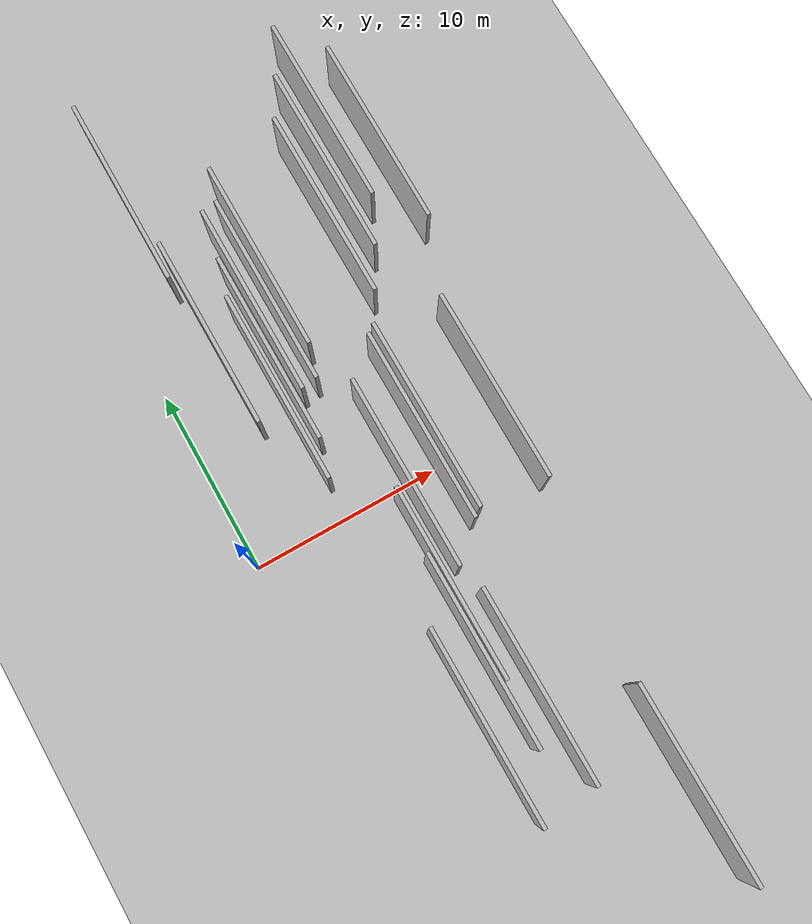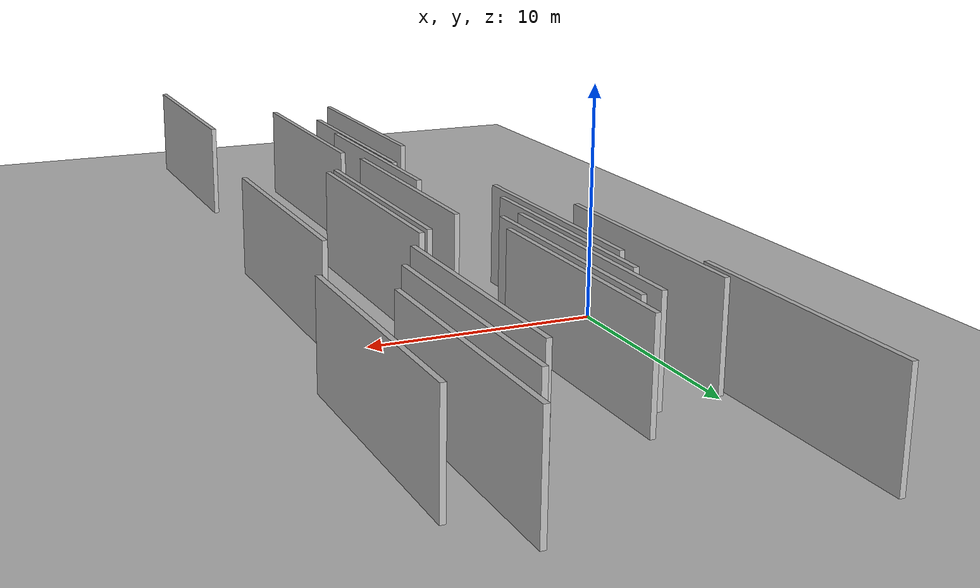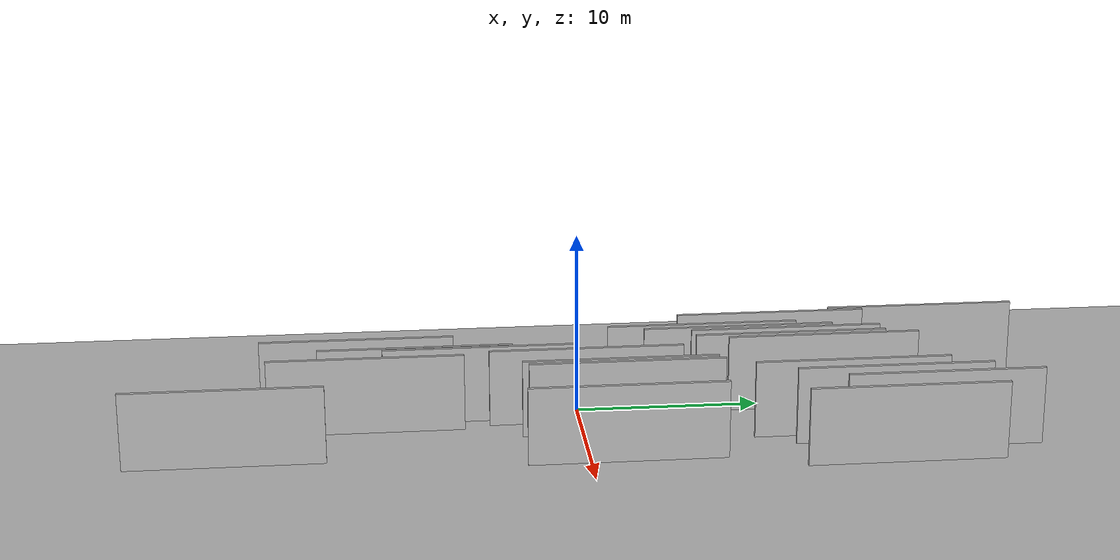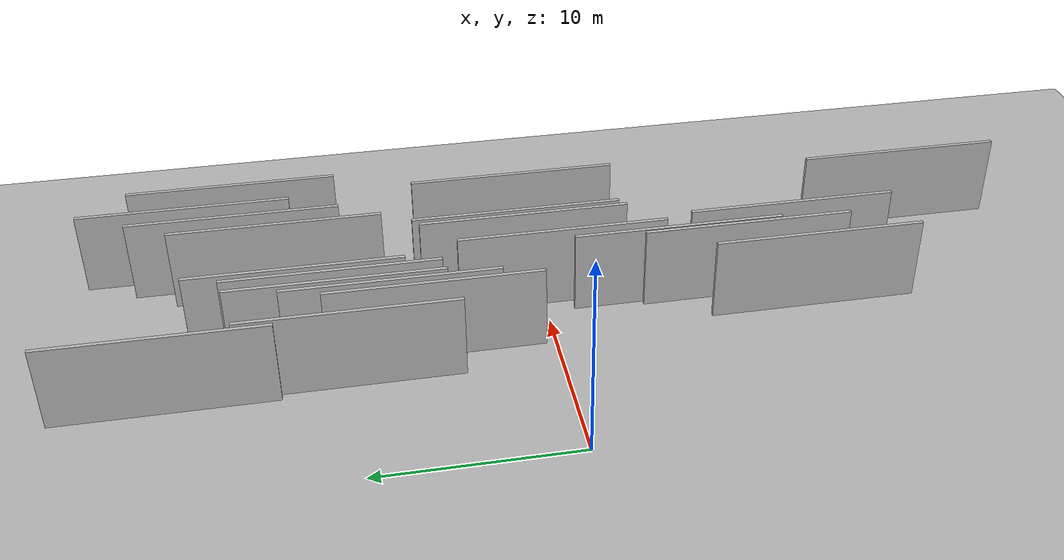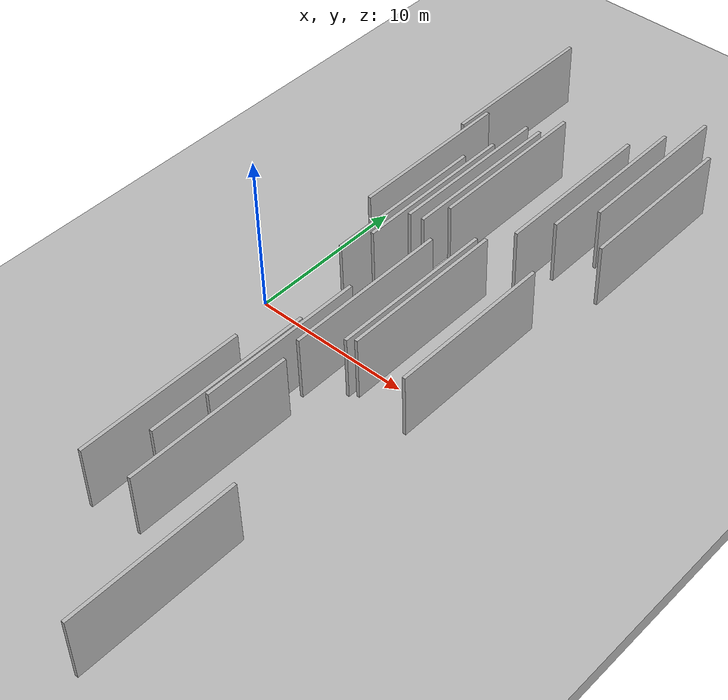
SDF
<?xml version="1.0" encoding="utf-8"?>

<sdf version="1.6">

   <world name="default">

      <gui fullscreen="0">

         <camera name="user_camera">

            <pose>-15 0 4.57585 0 0 0</pose>

            <view_controller>orbit</view_controller>

         </camera>

      </gui>

      <scene>

         <sky>

           <clouds>

             <speed>12</speed>

           </clouds>

         </sky>

         <ambient>0.4 0.4 0.4 1</ambient>

         <background>0.7 0.7 0.7 1</background>

         <shadows>1</shadows>

      </scene>

      <gravity>0 0 -9.8066</gravity>

      <magnetic_field>6e-06 2.3e-05 -4.2e-05</magnetic_field>

      <physics default="0" name="default_physics" type="ode">

         <ode>

            <solver>

               <type>quick</type>

               <iters>10</iters>

               <sor>1.0</sor>

               <use_dynamic_moi_rescaling>0</use_dynamic_moi_rescaling>

            </solver>

            <constraints>

               <cfm>0</cfm>

               <erp>0.2</erp>

               <contact_max_correcting_vel>100</contact_max_correcting_vel>

               <contact_surface_layer>0.001</contact_surface_layer>

            </constraints>

         </ode>

         <max_step_size>0.004</max_step_size>

         <real_time_factor>1</real_time_factor>

         <real_time_update_rate>250</real_time_update_rate>

      </physics>

      <light name="sun" type="directional">

         <cast_shadows>1</cast_shadows>

         <pose>0 0 10 0 0 0</pose>

         <diffuse>0.8 0.8 0.8 1</diffuse>

         <specular>0.2 0.2 0.2 1</specular>

         <attenuation>

            <range>1000</range>

            <constant>0.9</constant>

            <linear>0.01</linear>

            <quadratic>0.001</quadratic>

         </attenuation>

         <direction>-0.5 0.1 -0.9</direction>

      </light>

      <include>

         <name>ground_plane_1</name>

         <uri>model://HANNAS_ground_plane</uri>

         <pose>0 0 0  0 0 0</pose>

      </include>

      <include>

         <name>ground_plane_2</name>

         <uri>model://HANNAS_ground_plane</uri>

         <pose>100 0 0  0 0 0</pose>

      </include>

      <model name="HANNAS_wall_1">

         <static>1</static>

         <pose frame="">8.5832 -11.6122 2.5 0.000000 0.000000 1.570796</pose>

         <link name="link">

            <pose frame="">0 0 2.00 0 0 0</pose>

            <collision name="collision">

               <geometry>

                  <box>

                     <size>10.00 0.2 4.00</size>

                  </box>

               </geometry>

               <max_contacts>10</max_contacts>

               <surface>

                  <contact>

                     <ode/>

                  </contact>

                  <bounce/>

                  <friction>

                     <torsional>

                        <ode/>

                     </torsional>

                     <ode/>

                  </friction>

               </surface>

            </collision>

            <visual name="visual">

               <cast_shadows>0</cast_shadows>

               <geometry>

                  <box>

                     <size>10.00 0.2 4.00</size>

                  </box>

               </geometry>

               <material>

                  <script>

                     <uri>model://HANNAS_wall/materials/scripts</uri>

                     <uri>model://HANNAS_wall/materials/textures</uri>

                     <name>vrc/HANNAS_wall</name>

                  </script>

               </material>

            </visual>

            <self_collide>0</self_collide>

            <enable_wind>0</enable_wind>

            <kinematic>0</kinematic>

         </link>

      </model>

      <model name="HANNAS_wall_2">

         <static>1</static>

         <pose frame="">11.2308 12.9089 2.5 0.000000 0.000000 1.570796</pose>

         <link name="link">

            <pose frame="">0 0 2.00 0 0 0</pose>

            <collision name="collision">

               <geometry>

                  <box>

                     <size>10.00 0.2 4.00</size>

                  </box>

               </geometry>

               <max_contacts>10</max_contacts>

               <surface>

                  <contact>

                     <ode/>

                  </contact>

                  <bounce/>

                  <friction>

                     <torsional>

                        <ode/>

                     </torsional>

                     <ode/>

                  </friction>

               </surface>

            </collision>

            <visual name="visual">

               <cast_shadows>0</cast_shadows>

               <geometry>

                  <box>

                     <size>10.00 0.2 4.00</size>

                  </box>

               </geometry>

               <material>

                  <script>

                     <uri>model://HANNAS_wall/materials/scripts</uri>

                     <uri>model://HANNAS_wall/materials/textures</uri>

                     <name>vrc/HANNAS_wall</name>

                  </script>

               </material>

            </visual>

            <self_collide>0</self_collide>

            <enable_wind>0</enable_wind>

            <kinematic>0</kinematic>

         </link>

      </model>

      <model name="HANNAS_wall_3">

         <static>1</static>

         <pose frame="">13.4871 17.1658 2.5 0.000000 0.000000 1.570796</pose>

         <link name="link">

            <pose frame="">0 0 2.00 0 0 0</pose>

            <collision name="collision">

               <geometry>

                  <box>

                     <size>10.00 0.2 4.00</size>

                  </box>

               </geometry>

               <max_contacts>10</max_contacts>

               <surface>

                  <contact>

                     <ode/>

                  </contact>

                  <bounce/>

                  <friction>

                     <torsional>

                        <ode/>

                     </torsional>

                     <ode/>

                  </friction>

               </surface>

            </collision>

            <visual name="visual">

               <cast_shadows>0</cast_shadows>

               <geometry>

                  <box>

                     <size>10.00 0.2 4.00</size>

                  </box>

               </geometry>

               <material>

                  <script>

                     <uri>model://HANNAS_wall/materials/scripts</uri>

                     <uri>model://HANNAS_wall/materials/textures</uri>

                     <name>vrc/HANNAS_wall</name>

                  </script>

               </material>

            </visual>

            <self_collide>0</self_collide>

            <enable_wind>0</enable_wind>

            <kinematic>0</kinematic>

         </link>

      </model>

      <model name="HANNAS_wall_4">

         <static>1</static>

         <pose frame="">10.3436 1.5458 2.5 0.000000 0.000000 1.570796</pose>

         <link name="link">

            <pose frame="">0 0 2.00 0 0 0</pose>

            <collision name="collision">

               <geometry>

                  <box>

                     <size>10.00 0.2 4.00</size>

                  </box>

               </geometry>

               <max_contacts>10</max_contacts>

               <surface>

                  <contact>

                     <ode/>

                  </contact>

                  <bounce/>

                  <friction>

                     <torsional>

                        <ode/>

                     </torsional>

                     <ode/>

                  </friction>

               </surface>

            </collision>

            <visual name="visual">

               <cast_shadows>0</cast_shadows>

               <geometry>

                  <box>

                     <size>10.00 0.2 4.00</size>

                  </box>

               </geometry>

               <material>

                  <script>

                     <uri>model://HANNAS_wall/materials/scripts</uri>

                     <uri>model://HANNAS_wall/materials/textures</uri>

                     <name>vrc/HANNAS_wall</name>

                  </script>

               </material>

            </visual>

            <self_collide>0</self_collide>

            <enable_wind>0</enable_wind>

            <kinematic>0</kinematic>

         </link>

      </model>

      <model name="HANNAS_wall_5">

         <static>1</static>

         <pose frame="">12.3421 14.8504 2.5 0.000000 0.000000 1.570796</pose>

         <link name="link">

            <pose frame="">0 0 2.00 0 0 0</pose>

            <collision name="collision">

               <geometry>

                  <box>

                     <size>10.00 0.2 4.00</size>

                  </box>

               </geometry>

               <max_contacts>10</max_contacts>

               <surface>

                  <contact>

                     <ode/>

                  </contact>

                  <bounce/>

                  <friction>

                     <torsional>

                        <ode/>

                     </torsional>

                     <ode/>

                  </friction>

               </surface>

            </collision>

            <visual name="visual">

               <cast_shadows>0</cast_shadows>

               <geometry>

                  <box>

                     <size>10.00 0.2 4.00</size>

                  </box>

               </geometry>

               <material>

                  <script>

                     <uri>model://HANNAS_wall/materials/scripts</uri>

                     <uri>model://HANNAS_wall/materials/textures</uri>

                     <name>vrc/HANNAS_wall</name>

                  </script>

               </material>

            </visual>

            <self_collide>0</self_collide>

            <enable_wind>0</enable_wind>

            <kinematic>0</kinematic>

         </link>

      </model>

      <model name="HANNAS_wall_6">

         <static>1</static>

         <pose frame="">5.5385 7.9643 2.5 0.000000 0.000000 1.570796</pose>

         <link name="link">

            <pose frame="">0 0 2.00 0 0 0</pose>

            <collision name="collision">

               <geometry>

                  <box>

                     <size>10.00 0.2 4.00</size>

                  </box>

               </geometry>

               <max_contacts>10</max_contacts>

               <surface>

                  <contact>

                     <ode/>

                  </contact>

                  <bounce/>

                  <friction>

                     <torsional>

                        <ode/>

                     </torsional>

                     <ode/>

                  </friction>

               </surface>

            </collision>

            <visual name="visual">

               <cast_shadows>0</cast_shadows>

               <geometry>

                  <box>

                     <size>10.00 0.2 4.00</size>

                  </box>

               </geometry>

               <material>

                  <script>

                     <uri>model://HANNAS_wall/materials/scripts</uri>

                     <uri>model://HANNAS_wall/materials/textures</uri>

                     <name>vrc/HANNAS_wall</name>

                  </script>

               </material>

            </visual>

            <self_collide>0</self_collide>

            <enable_wind>0</enable_wind>

            <kinematic>0</kinematic>

         </link>

      </model>

      <model name="HANNAS_wall_7">

         <static>1</static>

         <pose frame="">5.6447 -12.0074 2.5 0.000000 0.000000 1.570796</pose>

         <link name="link">

            <pose frame="">0 0 2.00 0 0 0</pose>

            <collision name="collision">

               <geometry>

                  <box>

                     <size>10.00 0.2 4.00</size>

                  </box>

               </geometry>

               <max_contacts>10</max_contacts>

               <surface>

                  <contact>

                     <ode/>

                  </contact>

                  <bounce/>

                  <friction>

                     <torsional>

                        <ode/>

                     </torsional>

                     <ode/>

                  </friction>

               </surface>

            </collision>

            <visual name="visual">

               <cast_shadows>0</cast_shadows>

               <geometry>

                  <box>

                     <size>10.00 0.2 4.00</size>

                  </box>

               </geometry>

               <material>

                  <script>

                     <uri>model://HANNAS_wall/materials/scripts</uri>

                     <uri>model://HANNAS_wall/materials/textures</uri>

                     <name>vrc/HANNAS_wall</name>

                  </script>

               </material>

            </visual>

            <self_collide>0</self_collide>

            <enable_wind>0</enable_wind>

            <kinematic>0</kinematic>

         </link>

      </model>

      <model name="HANNAS_wall_8">

         <static>1</static>

         <pose frame="">13.7935 1.1958 2.5 0.000000 0.000000 1.570796</pose>

         <link name="link">

            <pose frame="">0 0 2.00 0 0 0</pose>

            <collision name="collision">

               <geometry>

                  <box>

                     <size>10.00 0.2 4.00</size>

                  </box>

               </geometry>

               <max_contacts>10</max_contacts>

               <surface>

                  <contact>

                     <ode/>

                  </contact>

                  <bounce/>

                  <friction>

                     <torsional>

                        <ode/>

                     </torsional>

                     <ode/>

                  </friction>

               </surface>

            </collision>

            <visual name="visual">

               <cast_shadows>0</cast_shadows>

               <geometry>

                  <box>

                     <size>10.00 0.2 4.00</size>

                  </box>

               </geometry>

               <material>

                  <script>

                     <uri>model://HANNAS_wall/materials/scripts</uri>

                     <uri>model://HANNAS_wall/materials/textures</uri>

                     <name>vrc/HANNAS_wall</name>

                  </script>

               </material>

            </visual>

            <self_collide>0</self_collide>

            <enable_wind>0</enable_wind>

            <kinematic>0</kinematic>

         </link>

      </model>

      <model name="HANNAS_wall_9">

         <static>1</static>

         <pose frame="">3.0660 18.2144 2.5 0.000000 0.000000 1.570796</pose>

         <link name="link">

            <pose frame="">0 0 2.00 0 0 0</pose>

            <collision name="collision">

               <geometry>

                  <box>

                     <size>10.00 0.2 4.00</size>

                  </box>

               </geometry>

               <max_contacts>10</max_contacts>

               <surface>

                  <contact>

                     <ode/>

                  </contact>

                  <bounce/>

                  <friction>

                     <torsional>

                        <ode/>

                     </torsional>

                     <ode/>

                  </friction>

               </surface>

            </collision>

            <visual name="visual">

               <cast_shadows>0</cast_shadows>

               <geometry>

                  <box>

                     <size>10.00 0.2 4.00</size>

                  </box>

               </geometry>

               <material>

                  <script>

                     <uri>model://HANNAS_wall/materials/scripts</uri>

                     <uri>model://HANNAS_wall/materials/textures</uri>

                     <name>vrc/HANNAS_wall</name>

                  </script>

               </material>

            </visual>

            <self_collide>0</self_collide>

            <enable_wind>0</enable_wind>

            <kinematic>0</kinematic>

         </link>

      </model>

      <model name="HANNAS_wall_10">

         <static>1</static>

         <pose frame="">15.2819 14.8924 2.5 0.000000 0.000000 1.570796</pose>

         <link name="link">

            <pose frame="">0 0 2.00 0 0 0</pose>

            <collision name="collision">

               <geometry>

                  <box>

                     <size>10.00 0.2 4.00</size>

                  </box>

               </geometry>

               <max_contacts>10</max_contacts>

               <surface>

                  <contact>

                     <ode/>

                  </contact>

                  <bounce/>

                  <friction>

                     <torsional>

                        <ode/>

                     </torsional>

                     <ode/>

                  </friction>

               </surface>

            </collision>

            <visual name="visual">

               <cast_shadows>0</cast_shadows>

               <geometry>

                  <box>

                     <size>10.00 0.2 4.00</size>

                  </box>

               </geometry>

               <material>

                  <script>

                     <uri>model://HANNAS_wall/materials/scripts</uri>

                     <uri>model://HANNAS_wall/materials/textures</uri>

                     <name>vrc/HANNAS_wall</name>

                  </script>

               </material>

            </visual>

            <self_collide>0</self_collide>

            <enable_wind>0</enable_wind>

            <kinematic>0</kinematic>

         </link>

      </model>

      <model name="HANNAS_wall_11">

         <static>1</static>

         <pose frame="">9.9164 1.2441 2.5 0.000000 0.000000 1.570796</pose>

         <link name="link">

            <pose frame="">0 0 2.00 0 0 0</pose>

            <collision name="collision">

               <geometry>

                  <box>

                     <size>10.00 0.2 4.00</size>

                  </box>

               </geometry>

               <max_contacts>10</max_contacts>

               <surface>

                  <contact>

                     <ode/>

                  </contact>

                  <bounce/>

                  <friction>

                     <torsional>

                        <ode/>

                     </torsional>

                     <ode/>

                  </friction>

               </surface>

            </collision>

            <visual name="visual">

               <cast_shadows>0</cast_shadows>

               <geometry>

                  <box>

                     <size>10.00 0.2 4.00</size>

                  </box>

               </geometry>

               <material>

                  <script>

                     <uri>model://HANNAS_wall/materials/scripts</uri>

                     <uri>model://HANNAS_wall/materials/textures</uri>

                     <name>vrc/HANNAS_wall</name>

                  </script>

               </material>

            </visual>

            <self_collide>0</self_collide>

            <enable_wind>0</enable_wind>

            <kinematic>0</kinematic>

         </link>

      </model>

      <model name="HANNAS_wall_12">

         <static>1</static>

         <pose frame="">3.4517 10.0063 2.5 0.000000 0.000000 1.570796</pose>

         <link name="link">

            <pose frame="">0 0 2.00 0 0 0</pose>

            <collision name="collision">

               <geometry>

                  <box>

                     <size>10.00 0.2 4.00</size>

                  </box>

               </geometry>

               <max_contacts>10</max_contacts>

               <surface>

                  <contact>

                     <ode/>

                  </contact>

                  <bounce/>

                  <friction>

                     <torsional>

                        <ode/>

                     </torsional>

                     <ode/>

                  </friction>

               </surface>

            </collision>

            <visual name="visual">

               <cast_shadows>0</cast_shadows>

               <geometry>

                  <box>

                     <size>10.00 0.2 4.00</size>

                  </box>

               </geometry>

               <material>

                  <script>

                     <uri>model://HANNAS_wall/materials/scripts</uri>

                     <uri>model://HANNAS_wall/materials/textures</uri>

                     <name>vrc/HANNAS_wall</name>

                  </script>

               </material>

            </visual>

            <self_collide>0</self_collide>

            <enable_wind>0</enable_wind>

            <kinematic>0</kinematic>

         </link>

      </model>

      <model name="HANNAS_wall_13">

         <static>1</static>

         <pose frame="">8.1816 -0.3200 2.5 0.000000 0.000000 1.570796</pose>

         <link name="link">

            <pose frame="">0 0 2.00 0 0 0</pose>

            <collision name="collision">

               <geometry>

                  <box>

                     <size>10.00 0.2 4.00</size>

                  </box>

               </geometry>

               <max_contacts>10</max_contacts>

               <surface>

                  <contact>

                     <ode/>

                  </contact>

                  <bounce/>

                  <friction>

                     <torsional>

                        <ode/>

                     </torsional>

                     <ode/>

                  </friction>

               </surface>

            </collision>

            <visual name="visual">

               <cast_shadows>0</cast_shadows>

               <geometry>

                  <box>

                     <size>10.00 0.2 4.00</size>

                  </box>

               </geometry>

               <material>

                  <script>

                     <uri>model://HANNAS_wall/materials/scripts</uri>

                     <uri>model://HANNAS_wall/materials/textures</uri>

                     <name>vrc/HANNAS_wall</name>

                  </script>

               </material>

            </visual>

            <self_collide>0</self_collide>

            <enable_wind>0</enable_wind>

            <kinematic>0</kinematic>

         </link>

      </model>

      <model name="HANNAS_wall_14">

         <static>1</static>

         <pose frame="">4.9936 6.1097 2.5 0.000000 0.000000 1.570796</pose>

         <link name="link">

            <pose frame="">0 0 2.00 0 0 0</pose>

            <collision name="collision">

               <geometry>

                  <box>

                     <size>10.00 0.2 4.00</size>

                  </box>

               </geometry>

               <max_contacts>10</max_contacts>

               <surface>

                  <contact>

                     <ode/>

                  </contact>

                  <bounce/>

                  <friction>

                     <torsional>

                        <ode/>

                     </torsional>

                     <ode/>

                  </friction>

               </surface>

            </collision>

            <visual name="visual">

               <cast_shadows>0</cast_shadows>

               <geometry>

                  <box>

                     <size>10.00 0.2 4.00</size>

                  </box>

               </geometry>

               <material>

                  <script>

                     <uri>model://HANNAS_wall/materials/scripts</uri>

                     <uri>model://HANNAS_wall/materials/textures</uri>

                     <name>vrc/HANNAS_wall</name>

                  </script>

               </material>

            </visual>

            <self_collide>0</self_collide>

            <enable_wind>0</enable_wind>

            <kinematic>0</kinematic>

         </link>

      </model>

      <model name="HANNAS_wall_15">

         <static>1</static>

         <pose frame="">7.2830 12.1739 2.5 0.000000 0.000000 1.570796</pose>

         <link name="link">

            <pose frame="">0 0 2.00 0 0 0</pose>

            <collision name="collision">

               <geometry>

                  <box>

                     <size>10.00 0.2 4.00</size>

                  </box>

               </geometry>

               <max_contacts>10</max_contacts>

               <surface>

                  <contact>

                     <ode/>

                  </contact>

                  <bounce/>

                  <friction>

                     <torsional>

                        <ode/>

                     </torsional>

                     <ode/>

                  </friction>

               </surface>

            </collision>

            <visual name="visual">

               <cast_shadows>0</cast_shadows>

               <geometry>

                  <box>

                     <size>10.00 0.2 4.00</size>

                  </box>

               </geometry>

               <material>

                  <script>

                     <uri>model://HANNAS_wall/materials/scripts</uri>

                     <uri>model://HANNAS_wall/materials/textures</uri>

                     <name>vrc/HANNAS_wall</name>

                  </script>

               </material>

            </visual>

            <self_collide>0</self_collide>

            <enable_wind>0</enable_wind>

            <kinematic>0</kinematic>

         </link>

      </model>

      <model name="HANNAS_wall_16">

         <static>1</static>

         <pose frame="">7.1995 -9.0365 2.5 0.000000 0.000000 1.570796</pose>

         <link name="link">

            <pose frame="">0 0 2.00 0 0 0</pose>

            <collision name="collision">

               <geometry>

                  <box>

                     <size>10.00 0.2 4.00</size>

                  </box>

               </geometry>

               <max_contacts>10</max_contacts>

               <surface>

                  <contact>

                     <ode/>

                  </contact>

                  <bounce/>

                  <friction>

                     <torsional>

                        <ode/>

                     </torsional>

                     <ode/>

                  </friction>

               </surface>

            </collision>

            <visual name="visual">

               <cast_shadows>0</cast_shadows>

               <geometry>

                  <box>

                     <size>10.00 0.2 4.00</size>

                  </box>

               </geometry>

               <material>

                  <script>

                     <uri>model://HANNAS_wall/materials/scripts</uri>

                     <uri>model://HANNAS_wall/materials/textures</uri>

                     <name>vrc/HANNAS_wall</name>

                  </script>

               </material>

            </visual>

            <self_collide>0</self_collide>

            <enable_wind>0</enable_wind>

            <kinematic>0</kinematic>

         </link>

      </model>

      <model name="HANNAS_wall_17">

         <static>1</static>

         <pose frame="">6.7868 10.5396 2.5 0.000000 0.000000 1.570796</pose>

         <link name="link">

            <pose frame="">0 0 2.00 0 0 0</pose>

            <collision name="collision">

               <geometry>

                  <box>

                     <size>10.00 0.2 4.00</size>

                  </box>

               </geometry>

               <max_contacts>10</max_contacts>

               <surface>

                  <contact>

                     <ode/>

                  </contact>

                  <bounce/>

                  <friction>

                     <torsional>

                        <ode/>

                     </torsional>

                     <ode/>

                  </friction>

               </surface>

            </collision>

            <visual name="visual">

               <cast_shadows>0</cast_shadows>

               <geometry>

                  <box>

                     <size>10.00 0.2 4.00</size>

                  </box>

               </geometry>

               <material>

                  <script>

                     <uri>model://HANNAS_wall/materials/scripts</uri>

                     <uri>model://HANNAS_wall/materials/textures</uri>

                     <name>vrc/HANNAS_wall</name>

                  </script>

               </material>

            </visual>

            <self_collide>0</self_collide>

            <enable_wind>0</enable_wind>

            <kinematic>0</kinematic>

         </link>

      </model>

      <model name="HANNAS_wall_18">

         <static>1</static>

         <pose frame="">7.4601 -5.7198 2.5 0.000000 0.000000 1.570796</pose>

         <link name="link">

            <pose frame="">0 0 2.00 0 0 0</pose>

            <collision name="collision">

               <geometry>

                  <box>

                     <size>10.00 0.2 4.00</size>

                  </box>

               </geometry>

               <max_contacts>10</max_contacts>

               <surface>

                  <contact>

                     <ode/>

                  </contact>

                  <bounce/>

                  <friction>

                     <torsional>

                        <ode/>

                     </torsional>

                     <ode/>

                  </friction>

               </surface>

            </collision>

            <visual name="visual">

               <cast_shadows>0</cast_shadows>

               <geometry>

                  <box>

                     <size>10.00 0.2 4.00</size>

                  </box>

               </geometry>

               <material>

                  <script>

                     <uri>model://HANNAS_wall/materials/scripts</uri>

                     <uri>model://HANNAS_wall/materials/textures</uri>

                     <name>vrc/HANNAS_wall</name>

                  </script>

               </material>

            </visual>

            <self_collide>0</self_collide>

            <enable_wind>0</enable_wind>

            <kinematic>0</kinematic>

         </link>

      </model>

      <model name="HANNAS_wall_19">

         <static>1</static>

         <pose frame="">12.4567 -18.6585 2.5 0.000000 0.000000 1.570796</pose>

         <link name="link">

            <pose frame="">0 0 2.00 0 0 0</pose>

            <collision name="collision">

               <geometry>

                  <box>

                     <size>10.00 0.2 4.00</size>

                  </box>

               </geometry>

               <max_contacts>10</max_contacts>

               <surface>

                  <contact>

                     <ode/>

                  </contact>

                  <bounce/>

                  <friction>

                     <torsional>

                        <ode/>

                     </torsional>

                     <ode/>

                  </friction>

               </surface>

            </collision>

            <visual name="visual">

               <cast_shadows>0</cast_shadows>

               <geometry>

                  <box>

                     <size>10.00 0.2 4.00</size>

                  </box>

               </geometry>

               <material>

                  <script>

                     <uri>model://HANNAS_wall/materials/scripts</uri>

                     <uri>model://HANNAS_wall/materials/textures</uri>

                     <name>vrc/HANNAS_wall</name>

                  </script>

               </material>

            </visual>

            <self_collide>0</self_collide>

            <enable_wind>0</enable_wind>

            <kinematic>0</kinematic>

         </link>

      </model>

      <model name="HANNAS_wall_20">

         <static>1</static>

         <pose frame="">5.9805 10.4029 2.5 0.000000 0.000000 1.570796</pose>

         <link name="link">

            <pose frame="">0 0 2.00 0 0 0</pose>

            <collision name="collision">

               <geometry>

                  <box>

                     <size>10.00 0.2 4.00</size>

                  </box>

               </geometry>

               <max_contacts>10</max_contacts>

               <surface>

                  <contact>

                     <ode/>

                  </contact>

                  <bounce/>

                  <friction>

                     <torsional>

                        <ode/>

                     </torsional>

                     <ode/>

                  </friction>

               </surface>

            </collision>

            <visual name="visual">

               <cast_shadows>0</cast_shadows>

               <geometry>

                  <box>

                     <size>10.00 0.2 4.00</size>

                  </box>

               </geometry>

               <material>

                  <script>

                     <uri>model://HANNAS_wall/materials/scripts</uri>

                     <uri>model://HANNAS_wall/materials/textures</uri>

                     <name>vrc/HANNAS_wall</name>

                  </script>

               </material>

            </visual>

            <self_collide>0</self_collide>

            <enable_wind>0</enable_wind>

            <kinematic>0</kinematic>

         </link>

      </model>

   </world>

</sdf>

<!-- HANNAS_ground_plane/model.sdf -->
<sdf version="1.4">
<model name="HANNAS_ground_plane">
  <static>true</static>
    <link name="link">
      <collision name="collision">
        <geometry>
          <plane>
            <normal>0 0 1</normal>
            <size>1000 1000</size>
          </plane>
        </geometry>
        <surface>
          <friction>
            <ode>
              <mu>100</mu>
              <mu2>50</mu2>
            </ode>
          </friction>
        </surface>
      </collision>
      <visual name="visual">
        <cast_shadows>false</cast_shadows>
        <geometry>
          <plane>
            <normal>0 0 1</normal>
            <size>1000 1000</size>
          </plane>
        </geometry>
        <material>
          <script>
            <uri>model://HANNAS_ground_plane/materials/scripts/HANNAS_ground_plane.material</uri>
	    <uri>model://HANNAS_ground_plane/materials/textures</uri>
            <name>HANNASGroundPlane/Image</name>
          </script>
        </material>
      </visual>
    </link>
  </model>
</sdf>
